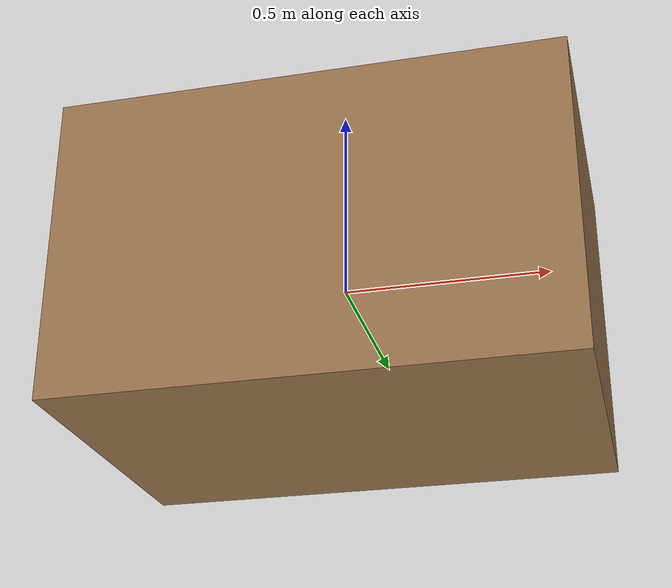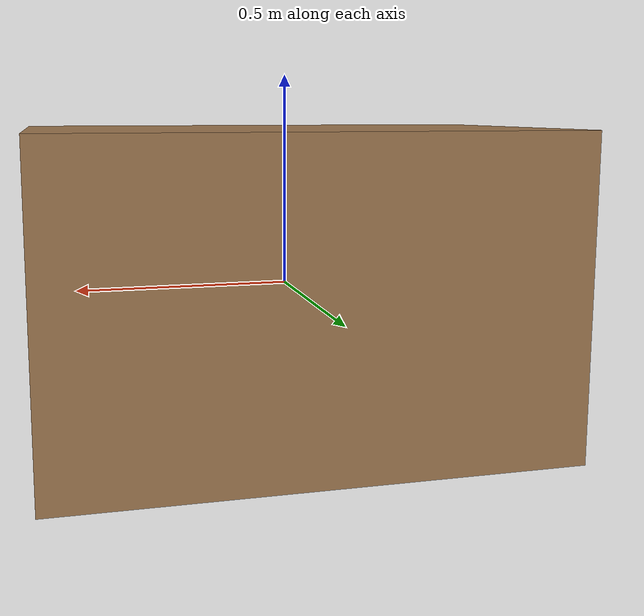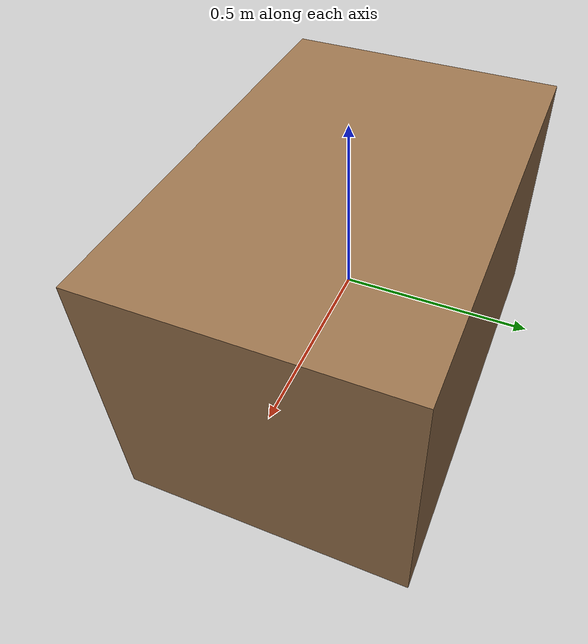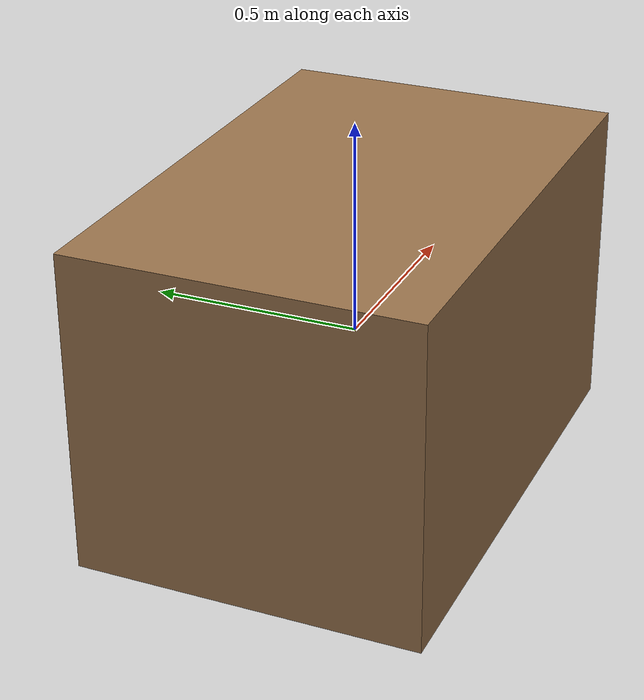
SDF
<?xml version="1.0"?>
<sdf version="1.7">
  <model name="table">
    <static>true</static>

    <link name="table_link">

      <!-- Collision -->
      <collision name="collision">
        <geometry>
          <box>
            <size>1.2 0.8 0.75</size>
          </box>
        </geometry>
      </collision>

      <!-- Visual -->
      <visual name="visual">
        <geometry>
          <box>
            <size>1.2 0.8 0.75</size>
          </box>
        </geometry>
        <material>
          <ambient>0.6 0.45 0.3 1</ambient>
          <diffuse>0.6 0.45 0.3 1</diffuse>
        </material>
      </visual>

    </link>
  </model>
</sdf>
